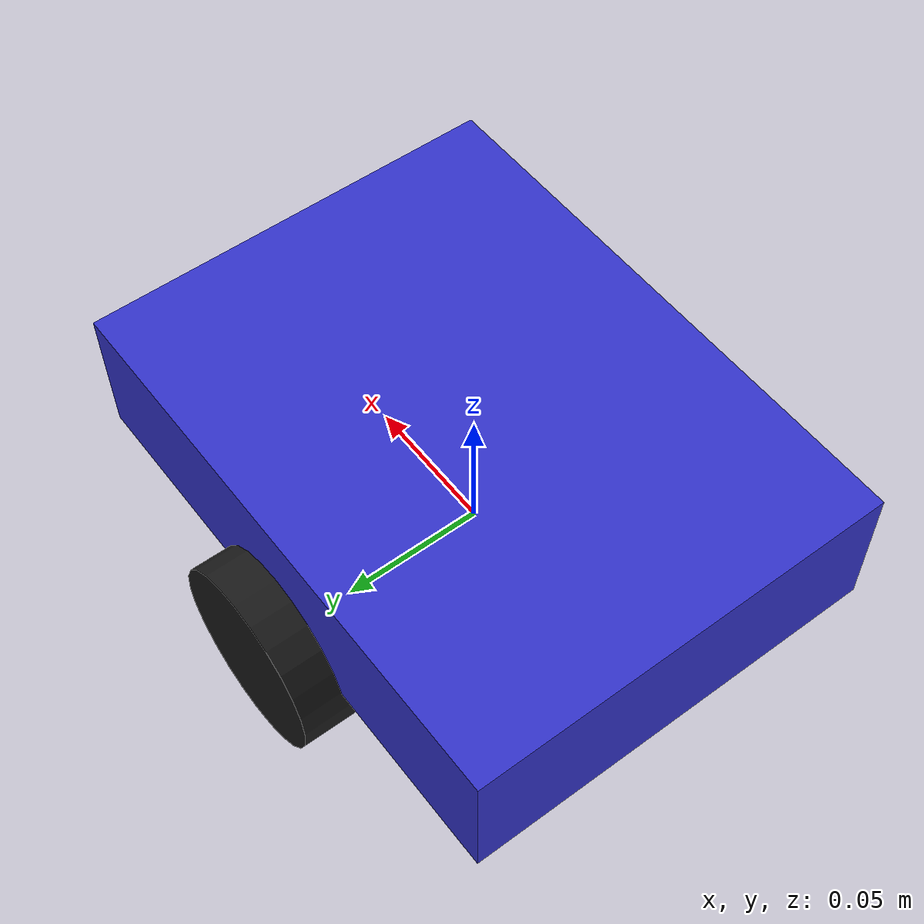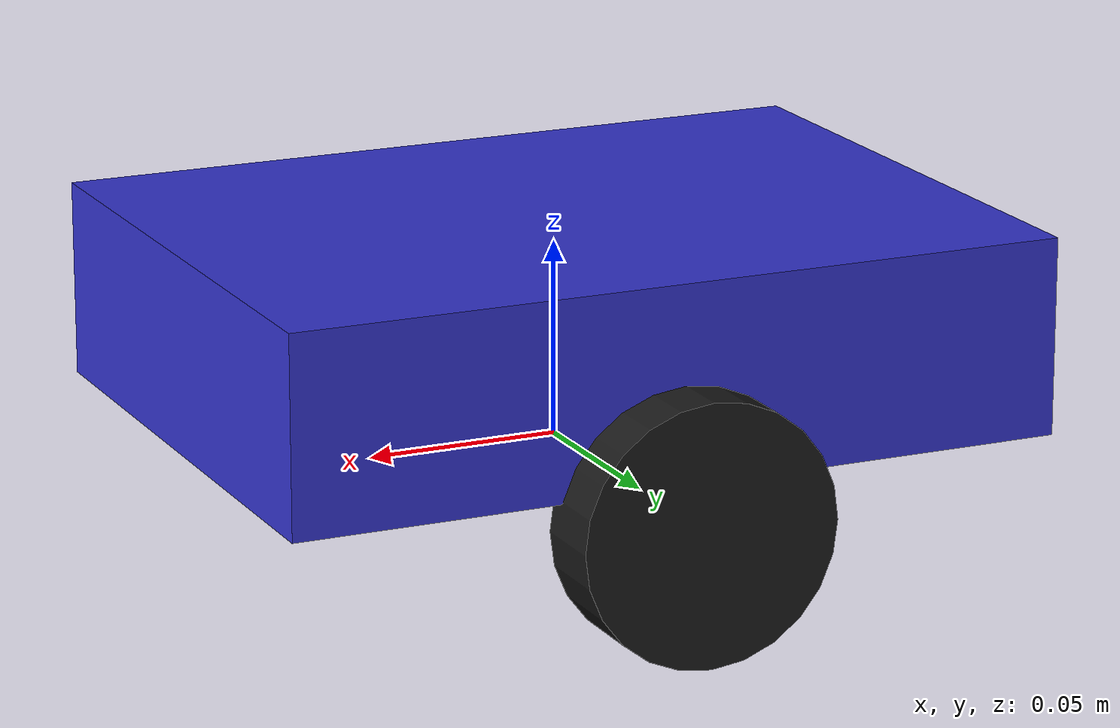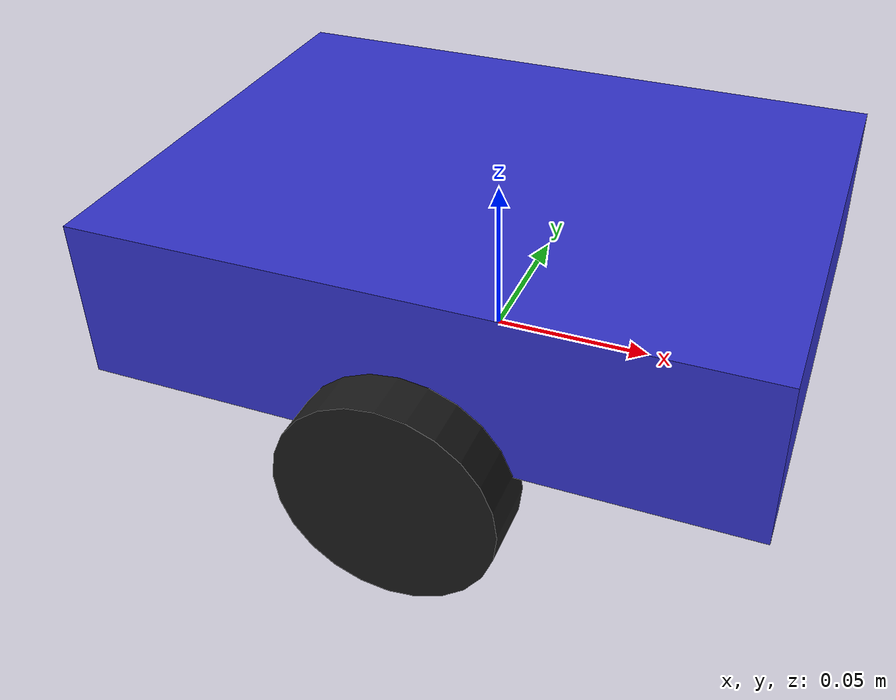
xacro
<?xml version="1.0"?>
<robot name="md_robot" xmlns:xacro="http://www.ros.org/wiki/xacro">

  <!-- 로봇 파라미터 -->
  <xacro:property name="wheel_radius" value="0.033"/>
  <xacro:property name="wheel_width" value="0.02"/>
  <xacro:property name="wheel_separation" value="0.16"/>
  <xacro:property name="base_length" value="0.2"/>
  <xacro:property name="base_width" value="0.15"/>
  <xacro:property name="base_height" value="0.05"/>

  <!-- Base Link -->
  <link name="base_link">
    <visual>
      <origin xyz="0 0 ${wheel_radius}" rpy="0 0 0"/>
      <geometry>
        <box size="${base_length} ${base_width} ${base_height}"/>
      </geometry>
      <material name="blue">
        <color rgba="0.2 0.2 0.8 1.0"/>
      </material>
    </visual>
    <collision>
      <origin xyz="0 0 ${wheel_radius}" rpy="0 0 0"/>
      <geometry>
        <box size="${base_length} ${base_width} ${base_height}"/>
      </geometry>
    </collision>
    <inertial>
      <mass value="1.0"/>
      <inertia ixx="0.01" ixy="0" ixz="0" iyy="0.01" iyz="0" izz="0.01"/>
    </inertial>
  </link>

  <!-- Left Wheel -->
  <link name="left_wheel_link">
    <visual>
      <geometry>
        <cylinder radius="${wheel_radius}" length="${wheel_width}"/>
      </geometry>
      <material name="black">
        <color rgba="0.1 0.1 0.1 1.0"/>
      </material>
    </visual>
    <collision>
      <geometry>
        <cylinder radius="${wheel_radius}" length="${wheel_width}"/>
      </geometry>
    </collision>
    <inertial>
      <mass value="0.1"/>
      <inertia ixx="0.001" ixy="0" ixz="0" iyy="0.001" iyz="0" izz="0.001"/>
    </inertial>
  </link>

  <joint name="left_wheel_joint" type="continuous">
    <parent link="base_link"/>
    <child link="left_wheel_link"/>
    <origin xyz="0 ${wheel_separation/2} 0" rpy="-${pi/2} 0 0"/>
    <axis xyz="0 0 1"/>
  </joint>

  <!-- Right Wheel -->
  <link name="right_wheel_link">
    <visual>
      <geometry>
        <cylinder radius="${wheel_radius}" length="${wheel_width}"/>
      </geometry>
      <material name="black">
        <color rgba="0.1 0.1 0.1 1.0"/>
      </material>
    </visual>
    <collision>
      <geometry>
        <cylinder radius="${wheel_radius}" length="${wheel_width}"/>
      </geometry>
    </collision>
    <inertial>
      <mass value="0.1"/>
      <inertia ixx="0.001" ixy="0" ixz="0" iyy="0.001" iyz="0" izz="0.001"/>
    </inertial>
  </link>

  <joint name="right_wheel_joint" type="continuous">
    <parent link="base_link"/>
    <child link="right_wheel_link"/>
    <origin xyz="0 -${wheel_separation/2} 0" rpy="-${pi/2} 0 0"/>
    <axis xyz="0 0 1"/>
  </joint>

  <!-- ros2_control: MD Motor Hardware Interface -->
  <ros2_control name="md_motor_system" type="system">
    <hardware>
      <!-- MD Motor Hardware Interface 플러그인 -->
      <plugin>md_hardware/MDMotorHardware</plugin>

      <!-- 시리얼 통신 파라미터 -->
      <param name="port">/dev/ttyMotor</param>
      <param name="baudrate">57600</param>
      <param name="motor_id">1</param>
      <param name="id_mdui">184</param>
      <param name="id_mdt">183</param>

      <!-- 로봇 파라미터 -->
      <param name="wheel_radius">0.033</param>
      <param name="wheel_separation">0.16</param>
      <param name="gear_ratio">15</param>
      <param name="poles">10</param>
    </hardware>

    <!-- 왼쪽 바퀴 조인트 -->
    <joint name="left_wheel_joint">
      <command_interface name="velocity">
        <param name="min">-10</param>
        <param name="max">10</param>
      </command_interface>
      <state_interface name="position"/>
      <state_interface name="velocity"/>
    </joint>

    <!-- 오른쪽 바퀴 조인트 -->
    <joint name="right_wheel_joint">
      <command_interface name="velocity">
        <param name="min">-10</param>
        <param name="max">10</param>
      </command_interface>
      <state_interface name="position"/>
      <state_interface name="velocity"/>
    </joint>
  </ros2_control>

</robot>
